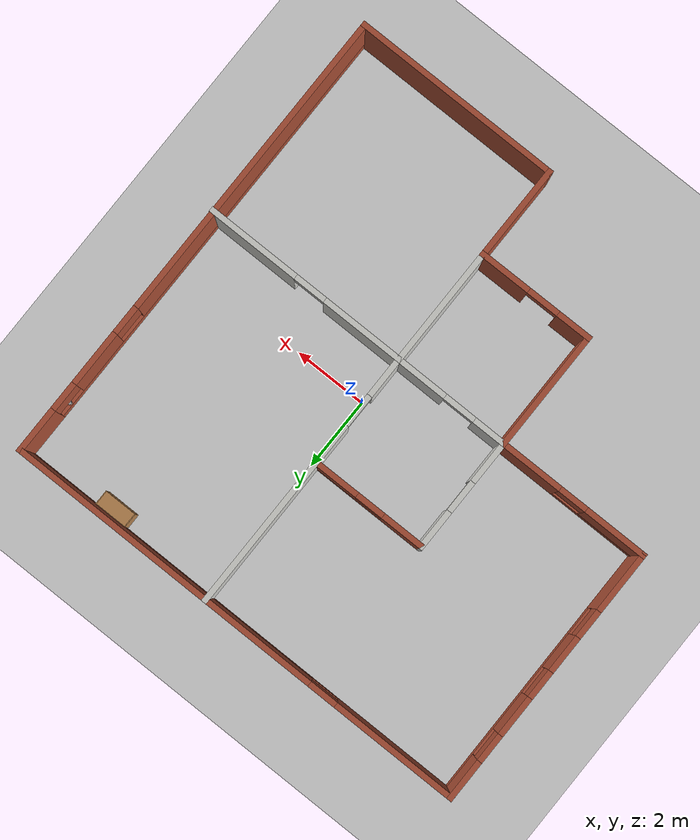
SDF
<sdf version="1.6">
 <world name="default">
  <light name="sun" type="directional">
   <pose>0 0 10 0 -0 0</pose>
   <diffuse>0.8 0.8 0.8 1</diffuse>
   <specular>0.2 0.2 0.2 1</specular>
   <attenuation>
    <range>1000</range>
    <constant>0.9</constant>
    <linear>0.01</linear>
    <quadratic>0.001</quadratic>
   </attenuation>
   <direction>-0.5 0.1 -0.9</direction>
  </light>
  <model name="ground_plane">
   <static>1</static>
   <link name="link">
    <collision name="collision">
     <geometry><plane><normal>0 0 1</normal><size>100 100</size></plane></geometry>
     <surface>
      <contact><collide_bitmask>65535</collide_bitmask></contact>
      <friction><ode><mu>100</mu><mu2>50</mu2></ode></friction>
     </surface>
    </collision>
    <visual name="visual">
     <cast_shadows>0</cast_shadows>
     <geometry><plane><normal>0 0 1</normal><size>100 100</size></plane></geometry>
     <material>
      <script><uri>file://media/materials/scripts/gazebo.material</uri><name>Gazebo/Grey</name></script>
     </material>
    </visual>
   </link>
  </model>
  <gravity>0 0 -9.8</gravity>
  <magnetic_field>6e-06 2.3e-05 -4.2e-05</magnetic_field>
  <atmosphere type="adiabatic"/>
  <physics name="default_physics" default="0" type="ode">
   <max_step_size>0.001</max_step_size>
   <real_time_factor>1</real_time_factor>
   <real_time_update_rate>1000</real_time_update_rate>
  </physics>
  <scene><ambient>0.4 0.4 0.4 1</ambient><background>0.7 0.7 0.7 1</background><shadows>1</shadows></scene>
  <audio><device>default</device></audio>
  <spherical_coordinates>
   <surface_model>EARTH_WGS84</surface_model>
   <latitude_deg>0</latitude_deg>
   <longitude_deg>0</longitude_deg>
   <elevation>0</elevation>
   <heading_deg>0</heading_deg>
  </spherical_coordinates>
  <model name="drone_house">
   <pose>-0.99574 -0.46258 0 0 -0 0</pose>
   <link name="Wall_13">
    <pose>-6.61096 2.90292 0 0 -0 1.57198</pose>
    <visual name="Wall_13_Visual_0">
     <pose>-2.87431 0 1.25 0 -0 0</pose>
     <geometry><box><size>1.78598 0.15 2.5</size></box></geometry>
     <material>
      <script><uri>file://media/materials/scripts/gazebo.material</uri><name>Gazebo/Bricks</name></script>
      <ambient>1 1 1 1</ambient>
     </material>
     <meta><layer>0</layer></meta>
    </visual>
    <collision name="Wall_13_Collision_0">
     <geometry><box><size>1.78598 0.15 2.5</size></box></geometry>
     <pose>-2.87431 0 1.25 0 -0 0</pose>
    </collision>
    <visual name="Wall_13_Visual_1">
     <pose>0.892988 0 0.25 0 -0 0</pose>
     <geometry><box><size>5.74863 0.15 0.5</size></box></geometry>
     <material>
      <script><uri>file://media/materials/scripts/gazebo.material</uri><name>Gazebo/Bricks</name></script>
      <ambient>1 1 1 1</ambient>
     </material>
     <meta><layer>0</layer></meta>
    </visual>
    <collision name="Wall_13_Collision_1">
     <geometry><box><size>5.74863 0.15 0.5</size></box></geometry>
     <pose>0.892988 0 0.25 0 -0 0</pose>
    </collision>
    <visual name="Wall_13_Visual_2">
     <pose>-0.659458 0 1.5 0 -0 0</pose>
     <geometry><box><size>1.04373 0.15 2</size></box></geometry>
     <material>
      <script><uri>file://media/materials/scripts/gazebo.material</uri><name>Gazebo/Bricks</name></script>
      <ambient>1 1 1 1</ambient>
     </material>
     <meta><layer>0</layer></meta>
    </visual>
    <collision name="Wall_13_Collision_2">
     <geometry><box><size>1.04373 0.15 2</size></box></geometry>
     <pose>-0.659458 0 1.5 0 -0 0</pose>
    </collision>
    <visual name="Wall_13_Visual_3">
     <pose>1.2293 0 1.5 0 -0 0</pose>
     <geometry><box><size>1.13378 0.15 2</size></box></geometry>
     <material>
      <script><uri>file://media/materials/scripts/gazebo.material</uri><name>Gazebo/Bricks</name></script>
      <ambient>1 1 1 1</ambient>
     </material>
     <meta><layer>0</layer></meta>
    </visual>
    <collision name="Wall_13_Collision_3">
     <geometry><box><size>1.13378 0.15 2</size></box></geometry>
     <pose>1.2293 0 1.5 0 -0 0</pose>
    </collision>
    <visual name="Wall_13_Visual_4">
     <pose>3.18174 0 1.5 0 -0 0</pose>
     <geometry><box><size>1.17111 0.15 2</size></box></geometry>
     <material>
      <script><uri>file://media/materials/scripts/gazebo.material</uri><name>Gazebo/Bricks</name></script>
      <ambient>1 1 1 1</ambient>
     </material>
     <meta><layer>0</layer></meta>
    </visual>
    <collision name="Wall_13_Collision_4">
     <geometry><box><size>1.17111 0.15 2</size></box></geometry>
     <pose>3.18174 0 1.5 0 -0 0</pose>
    </collision>
    <visual name="Wall_13_Visual_5">
     <pose>-1.58133 0 1.9 0 -0 0</pose>
     <geometry><box><size>0.8 0.15 1.2</size></box></geometry>
     <material>
      <script><uri>file://media/materials/scripts/gazebo.material</uri><name>Gazebo/Bricks</name></script>
      <ambient>1 1 1 1</ambient>
     </material>
     <meta><layer>0</layer></meta>
    </visual>
    <collision name="Wall_13_Collision_5">
     <geometry><box><size>0.8 0.15 1.2</size></box></geometry>
     <pose>-1.58133 0 1.9 0 -0 0</pose>
    </collision>
    <visual name="Wall_13_Visual_6">
     <pose>0.262409 0 1.9 0 -0 0</pose>
     <geometry><box><size>0.8 0.15 1.2</size></box></geometry>
     <material>
      <script><uri>file://media/materials/scripts/gazebo.material</uri><name>Gazebo/Bricks</name></script>
      <ambient>1 1 1 1</ambient>
     </material>
     <meta><layer>0</layer></meta>
    </visual>
    <collision name="Wall_13_Collision_6">
     <geometry><box><size>0.8 0.15 1.2</size></box></geometry>
     <pose>0.262409 0 1.9 0 -0 0</pose>
    </collision>
    <visual name="Wall_13_Visual_7">
     <pose>2.19619 0 1.9 0 -0 0</pose>
     <geometry><box><size>0.8 0.15 1.2</size></box></geometry>
     <material>
      <script><uri>file://media/materials/scripts/gazebo.material</uri><name>Gazebo/Bricks</name></script>
      <ambient>1 1 1 1</ambient>
     </material>
     <meta><layer>0</layer></meta>
    </visual>
    <collision name="Wall_13_Collision_7">
     <geometry><box><size>0.8 0.15 1.2</size></box></geometry>
     <pose>2.19619 0 1.9 0 -0 0</pose>
    </collision>
   </link>
   <link name="Wall_14">
    <pose>-0.010141 6.59522 0 0 -0 0</pose>
    <visual name="Wall_14_Visual_0">
     <pose>-4.88736 0 1.25 0 -0 0</pose>
     <geometry><box><size>3.5857 0.15 2.5</size></box></geometry>
     <material>
      <script><uri>file://media/materials/scripts/gazebo.material</uri><name>Gazebo/Bricks</name></script>
      <ambient>1 1 1 1</ambient>
     </material>
     <meta><layer>0</layer></meta>
    </visual>
    <collision name="Wall_14_Collision_0">
     <geometry><box><size>3.5857 0.15 2.5</size></box></geometry>
     <pose>-4.88736 0 1.25 0 -0 0</pose>
    </collision>
    <visual name="Wall_14_Visual_1">
     <pose>1.79285 0 0.25 0 -0 0</pose>
     <geometry><box><size>9.77472 0.15 0.5</size></box></geometry>
     <material>
      <script><uri>file://media/materials/scripts/gazebo.material</uri><name>Gazebo/Bricks</name></script>
      <ambient>1 1 1 1</ambient>
     </material>
     <meta><layer>0</layer></meta>
    </visual>
    <collision name="Wall_14_Collision_1">
     <geometry><box><size>9.77472 0.15 0.5</size></box></geometry>
     <pose>1.79285 0 0.25 0 -0 0</pose>
    </collision>
    <visual name="Wall_14_Visual_2">
     <pose>2.19285 0 1.5 0 -0 0</pose>
     <geometry><box><size>8.97472 0.15 2</size></box></geometry>
     <material>
      <script><uri>file://media/materials/scripts/gazebo.material</uri><name>Gazebo/Bricks</name></script>
      <ambient>1 1 1 1</ambient>
     </material>
     <meta><layer>0</layer></meta>
    </visual>
    <collision name="Wall_14_Collision_2">
     <geometry><box><size>8.97472 0.15 2</size></box></geometry>
     <pose>2.19285 0 1.5 0 -0 0</pose>
    </collision>
    <visual name="Wall_14_Visual_3">
     <pose>-2.69451 0 1.9 0 -0 0</pose>
     <geometry><box><size>0.8 0.15 1.2</size></box></geometry>
     <material>
      <script><uri>file://media/materials/scripts/gazebo.material</uri><name>Gazebo/Bricks</name></script>
      <ambient>1 1 1 1</ambient>
     </material>
     <meta><layer>0</layer></meta>
    </visual>
    <collision name="Wall_14_Collision_3">
     <geometry><box><size>0.8 0.15 1.2</size></box></geometry>
     <pose>-2.69451 0 1.9 0 -0 0</pose>
    </collision>
   </link>
   <link name="Wall_15">
    <pose>6.59537 -0.000481 0 0 -0 -1.57075</pose>
    <visual name="Wall_15_Visual_0">
     <pose>-6.00643 0 1.25 0 -0 0</pose>
     <geometry><box><size>1.32856 0.15 2.5</size></box></geometry>
     <material>
      <script><uri>file://media/materials/scripts/gazebo.material</uri><name>Gazebo/Bricks</name></script>
      <ambient>1 1 1 1</ambient>
     </material>
     <meta><layer>0</layer></meta>
    </visual>
    <collision name="Wall_15_Collision_0">
     <geometry><box><size>1.32856 0.15 2.5</size></box></geometry>
     <pose>-6.00643 0 1.25 0 -0 0</pose>
    </collision>
    <visual name="Wall_15_Visual_1">
     <pose>0.664278 0 0.25 0 -0 0</pose>
     <geometry><box><size>12.0129 0.15 0.5</size></box></geometry>
     <material>
      <script><uri>file://media/materials/scripts/gazebo.material</uri><name>Gazebo/Bricks</name></script>
      <ambient>1 1 1 1</ambient>
     </material>
     <meta><layer>0</layer></meta>
    </visual>
    <collision name="Wall_15_Collision_1">
     <geometry><box><size>12.0129 0.15 0.5</size></box></geometry>
     <pose>0.664278 0 0.25 0 -0 0</pose>
    </collision>
    <visual name="Wall_15_Visual_2">
     <pose>-3.76168 0 1.5 0 -0 0</pose>
     <geometry><box><size>1.56093 0.15 2</size></box></geometry>
     <material>
      <script><uri>file://media/materials/scripts/gazebo.material</uri><name>Gazebo/Bricks</name></script>
      <ambient>1 1 1 1</ambient>
     </material>
     <meta><layer>0</layer></meta>
    </visual>
    <collision name="Wall_15_Collision_2">
     <geometry><box><size>1.56093 0.15 2</size></box></geometry>
     <pose>-3.76168 0 1.5 0 -0 0</pose>
    </collision>
    <visual name="Wall_15_Visual_3">
     <pose>2.24474 0 1.5 0 -0 0</pose>
     <geometry><box><size>8.85193 0.15 2</size></box></geometry>
     <material>
      <script><uri>file://media/materials/scripts/gazebo.material</uri><name>Gazebo/Bricks</name></script>
      <ambient>1 1 1 1</ambient>
     </material>
     <meta><layer>0</layer></meta>
    </visual>
    <collision name="Wall_15_Collision_3">
     <geometry><box><size>8.85193 0.15 2</size></box></geometry>
     <pose>2.24474 0 1.5 0 -0 0</pose>
    </collision>
    <visual name="Wall_15_Visual_4">
     <pose>-4.94215 0 1.9 0 -0 0</pose>
     <geometry><box><size>0.8 0.15 1.2</size></box></geometry>
     <material>
      <script><uri>file://media/materials/scripts/gazebo.material</uri><name>Gazebo/Bricks</name></script>
      <ambient>1 1 1 1</ambient>
     </material>
     <meta><layer>0</layer></meta>
    </visual>
    <collision name="Wall_15_Collision_4">
     <geometry><box><size>0.8 0.15 1.2</size></box></geometry>
     <pose>-4.94215 0 1.9 0 -0 0</pose>
    </collision>
    <visual name="Wall_15_Visual_5">
     <pose>-2.58122 0 1.9 0 -0 0</pose>
     <geometry><box><size>0.8 0.15 1.2</size></box></geometry>
     <material>
      <script><uri>file://media/materials/scripts/gazebo.material</uri><name>Gazebo/Bricks</name></script>
      <ambient>1 1 1 1</ambient>
     </material>
     <meta><layer>0</layer></meta>
    </visual>
    <collision name="Wall_15_Collision_5">
     <geometry><box><size>0.8 0.15 1.2</size></box></geometry>
     <pose>-2.58122 0 1.9 0 -0 0</pose>
    </collision>
   </link>
   <link name="Wall_16">
    <collision name="Wall_16_Collision">
     <geometry><box><size>5.85798 0.15 2.5</size></box></geometry>
     <pose>0 0 1.25 0 -0 0</pose>
    </collision>
    <visual name="Wall_16_Visual">
     <pose>0 0 1.25 0 -0 0</pose>
     <geometry><box><size>5.85798 0.15 2.5</size></box></geometry>
     <material>
      <script><uri>file://media/materials/scripts/gazebo.material</uri><name>Gazebo/Bricks</name></script>
      <ambient>1 1 1 1</ambient>
     </material>
     <meta><layer>0</layer></meta>
    </visual>
    <pose>3.74169 -6.59618 0 0 -0 3.14159</pose>
   </link>
   <link name="Wall_17">
    <collision name="Wall_17_Collision">
     <geometry><box><size>2.70831 0.15 2.5</size></box></geometry>
     <pose>0 0 1.25 0 -0 0</pose>
    </collision>
    <visual name="Wall_17_Visual">
     <pose>0 0 1.25 0 -0 0</pose>
     <geometry><box><size>2.70831 0.15 2.5</size></box></geometry>
     <material>
      <script><uri>file://media/materials/scripts/gazebo.material</uri><name>Gazebo/Bricks</name></script>
      <ambient>1 1 1 1</ambient>
     </material>
     <meta><layer>0</layer></meta>
    </visual>
    <pose>0.887696 -5.31703 0 0 -0 1.5708</pose>
   </link>
   <link name="Wall_18">
    <pose>-0.725709 -4.0443 0 0 -0 -3.13761</pose>
    <visual name="Wall_18_Visual_0">
     <pose>-0.951715 0 1.25 0 -0 0</pose>
     <geometry><box><size>1.47348 0.15 2.5</size></box></geometry>
     <material>
      <script><uri>file://media/materials/scripts/gazebo.material</uri><name>Gazebo/Bricks</name></script>
      <ambient>1 1 1 1</ambient>
     </material>
     <meta><layer>0</layer></meta>
    </visual>
    <collision name="Wall_18_Collision_0">
     <geometry><box><size>1.47348 0.15 2.5</size></box></geometry>
     <pose>-0.951715 0 1.25 0 -0 0</pose>
    </collision>
    <visual name="Wall_18_Visual_1">
     <pose>1.18674 0 1.25 0 -0 0</pose>
     <geometry><box><size>1.00343 0.15 2.5</size></box></geometry>
     <material>
      <script><uri>file://media/materials/scripts/gazebo.material</uri><name>Gazebo/Bricks</name></script>
      <ambient>1 1 1 1</ambient>
     </material>
     <meta><layer>0</layer></meta>
    </visual>
    <collision name="Wall_18_Collision_1">
     <geometry><box><size>1.00343 0.15 2.5</size></box></geometry>
     <pose>1.18674 0 1.25 0 -0 0</pose>
    </collision>
    <visual name="Wall_18_Visual_2">
     <pose>0.235026 0 2.25 0 -0 0</pose>
     <geometry><box><size>0.9 0.15 0.5</size></box></geometry>
     <material>
      <script><uri>file://media/materials/scripts/gazebo.material</uri><name>Gazebo/Bricks</name></script>
      <ambient>1 1 1 1</ambient>
     </material>
     <meta><layer>0</layer></meta>
    </visual>
    <collision name="Wall_18_Collision_2">
     <geometry><box><size>0.9 0.15 0.5</size></box></geometry>
     <pose>0.235026 0 2.25 0 -0 0</pose>
    </collision>
   </link>
   <link name="Wall_19">
    <collision name="Wall_19_Collision">
     <geometry><box><size>3.41538 0.15 2.5</size></box></geometry>
     <pose>0 0 1.25 0 -0 0</pose>
    </collision>
    <visual name="Wall_19_Visual">
     <pose>0 0 1.25 0 -0 0</pose>
     <geometry><box><size>3.41538 0.15 2.5</size></box></geometry>
     <material>
      <script><uri>file://media/materials/scripts/gazebo.material</uri><name>Gazebo/Bricks</name></script>
      <ambient>1 1 1 1</ambient>
     </material>
     <meta><layer>0</layer></meta>
    </visual>
    <pose>-2.33911 -2.41804 0 0 -0 1.5708</pose>
   </link>
   <link name="Wall_20">
    <pose>-4.47284 -0.787366 0 0 -0 -3.14065</pose>
    <visual name="Wall_20_Visual_0">
     <pose>-1.30538 0 1.25 0 -0 0</pose>
     <geometry><box><size>1.80669 0.15 2.5</size></box></geometry>
     <material>
      <script><uri>file://media/materials/scripts/gazebo.material</uri><name>Gazebo/Bricks</name></script>
      <ambient>0.760784 0.662745 0.627451 1</ambient>
     </material>
     <meta><layer>0</layer></meta>
    </visual>
    <collision name="Wall_20_Collision_0">
     <geometry><box><size>1.80669 0.15 2.5</size></box></geometry>
     <pose>-1.30538 0 1.25 0 -0 0</pose>
    </collision>
    <visual name="Wall_20_Visual_1">
     <pose>0.903347 0 0.25 0 -0 0</pose>
     <geometry><box><size>2.61077 0.15 0.5</size></box></geometry>
     <material>
      <script><uri>file://media/materials/scripts/gazebo.material</uri><name>Gazebo/Bricks</name></script>
      <ambient>0.760784 0.662745 0.627451 1</ambient>
     </material>
     <meta><layer>0</layer></meta>
    </visual>
    <collision name="Wall_20_Collision_1">
     <geometry><box><size>2.61077 0.15 0.5</size></box></geometry>
     <pose>0.903347 0 0.25 0 -0 0</pose>
    </collision>
    <visual name="Wall_20_Visual_2">
     <pose>1.30335 0 1.5 0 -0 0</pose>
     <geometry><box><size>1.81077 0.15 2</size></box></geometry>
     <material>
      <script><uri>file://media/materials/scripts/gazebo.material</uri><name>Gazebo/Bricks</name></script>
      <ambient>0.760784 0.662745 0.627451 1</ambient>
     </material>
     <meta><layer>0</layer></meta>
    </visual>
    <collision name="Wall_20_Collision_2">
     <geometry><box><size>1.81077 0.15 2</size></box></geometry>
     <pose>1.30335 0 1.5 0 -0 0</pose>
    </collision>
    <visual name="Wall_20_Visual_3">
     <pose>-0.002037 0 1.9 0 -0 0</pose>
     <geometry><box><size>0.8 0.15 1.2</size></box></geometry>
     <material>
      <script><uri>file://media/materials/scripts/gazebo.material</uri><name>Gazebo/Bricks</name></script>
      <ambient>0.760784 0.662745 0.627451 1</ambient>
     </material>
     <meta><layer>0</layer></meta>
    </visual>
    <collision name="Wall_20_Collision_3">
     <geometry><box><size>0.8 0.15 1.2</size></box></geometry>
     <pose>-0.002037 0 1.9 0 -0 0</pose>
    </collision>
   </link>
   <link name="Wall_22">
    <collision name="Wall_22_Collision">
     <geometry><box><size>3.39398 0.15 2.5</size></box></geometry>
     <pose>0 0 1.25 0 -0 0</pose>
    </collision>
    <visual name="Wall_22_Visual">
     <pose>0 0 1.25 0 -0 0</pose>
     <geometry><box><size>3.39398 0.15 2.5</size></box></geometry>
     <material>
      <script><uri>file://media/materials/scripts/gazebo.material</uri><name>Gazebo/CeilingTiled</name></script>
      <ambient>1 1 1 1</ambient>
     </material>
     <meta><layer>0</layer></meta>
    </visual>
    <pose>0.887888 -2.41588 0 0 -0 1.57068</pose>
   </link>
   <link name="Wall_23">
    <pose>-0.725517 -0.789622 0 0 -0 3.13895</pose>
    <visual name="Wall_23_Visual_0">
     <pose>-0.937286 0 1.25 0 -0 0</pose>
     <geometry><box><size>1.50263 0.15 2.5</size></box></geometry>
     <material>
      <script><uri>file://media/materials/scripts/gazebo.material</uri><name>Gazebo/CeilingTiled</name></script>
      <ambient>1 1 1 1</ambient>
     </material>
     <meta><layer>0</layer></meta>
    </visual>
    <collision name="Wall_23_Collision_0">
     <geometry><box><size>1.50263 0.15 2.5</size></box></geometry>
     <pose>-0.937286 0 1.25 0 -0 0</pose>
    </collision>
    <visual name="Wall_23_Visual_1">
     <pose>1.20132 0 1.25 0 -0 0</pose>
     <geometry><box><size>0.974572 0.15 2.5</size></box></geometry>
     <material>
      <script><uri>file://media/materials/scripts/gazebo.material</uri><name>Gazebo/CeilingTiled</name></script>
      <ambient>1 1 1 1</ambient>
     </material>
     <meta><layer>0</layer></meta>
    </visual>
    <collision name="Wall_23_Collision_1">
     <geometry><box><size>0.974572 0.15 2.5</size></box></geometry>
     <pose>1.20132 0 1.25 0 -0 0</pose>
    </collision>
    <visual name="Wall_23_Visual_2">
     <pose>0.26403 0 2.25 0 -0 0</pose>
     <geometry><box><size>0.9 0.15 0.5</size></box></geometry>
     <material>
      <script><uri>file://media/materials/scripts/gazebo.material</uri><name>Gazebo/CeilingTiled</name></script>
      <ambient>1 1 1 1</ambient>
     </material>
     <meta><layer>0</layer></meta>
    </visual>
    <collision name="Wall_23_Collision_2">
     <geometry><box><size>0.9 0.15 0.5</size></box></geometry>
     <pose>0.26403 0 2.25 0 -0 0</pose>
    </collision>
   </link>
   <link name="Wall_26">
    <pose>-2.3392 0.792116 0 0 -0 1.57085</pose>
    <visual name="Wall_26_Visual_0">
     <pose>-1.02327 0 1.25 0 -0 0</pose>
     <geometry><box><size>1.25844 0.15 2.5</size></box></geometry>
     <material>
      <script><uri>file://media/materials/scripts/gazebo.material</uri><name>Gazebo/CeilingTiled</name></script>
      <ambient>1 1 1 1</ambient>
     </material>
     <meta><layer>0</layer></meta>
    </visual>
    <collision name="Wall_26_Collision_0">
     <geometry><box><size>1.25844 0.15 2.5</size></box></geometry>
     <pose>-1.02327 0 1.25 0 -0 0</pose>
    </collision>
    <visual name="Wall_26_Visual_1">
     <pose>1.07922 0 1.25 0 -0 0</pose>
     <geometry><box><size>1.14654 0.15 2.5</size></box></geometry>
     <material>
      <script><uri>file://media/materials/scripts/gazebo.material</uri><name>Gazebo/CeilingTiled</name></script>
      <ambient>1 1 1 1</ambient>
     </material>
     <meta><layer>0</layer></meta>
    </visual>
    <collision name="Wall_26_Collision_1">
     <geometry><box><size>1.14654 0.15 2.5</size></box></geometry>
     <pose>1.07922 0 1.25 0 -0 0</pose>
    </collision>
    <visual name="Wall_26_Visual_2">
     <pose>0.05595 0 2.25 0 -0 0</pose>
     <geometry><box><size>0.9 0.15 0.5</size></box></geometry>
     <material>
      <script><uri>file://media/materials/scripts/gazebo.material</uri><name>Gazebo/CeilingTiled</name></script>
      <ambient>1 1 1 1</ambient>
     </material>
     <meta><layer>0</layer></meta>
    </visual>
    <collision name="Wall_26_Collision_2">
     <geometry><box><size>0.9 0.15 0.5</size></box></geometry>
     <pose>0.05595 0 2.25 0 -0 0</pose>
    </collision>
   </link>
   <link name="Wall_27">
    <pose>-0.729 2.37381 0 0 -0 0.002625</pose>
    <visual name="Wall_27_Visual_0">
     <pose>-1.06406 0 1.25 0 -0 0</pose>
     <geometry><box><size>1.24245 0.15 2.5</size></box></geometry>
     <material>
      <script><uri>file://media/materials/scripts/gazebo.material</uri><name>Gazebo/Bricks</name></script>
      <ambient>1 1 1 1</ambient>
     </material>
     <meta><layer>0</layer></meta>
    </visual>
    <collision name="Wall_27_Collision_0">
     <geometry><box><size>1.24245 0.15 2.5</size></box></geometry>
     <pose>-1.06406 0 1.25 0 -0 0</pose>
    </collision>
    <visual name="Wall_27_Visual_1">
     <pose>0.621227 0 0.25 0 -0 0</pose>
     <geometry><box><size>2.12812 0.15 0.5</size></box></geometry>
     <material>
      <script><uri>file://media/materials/scripts/gazebo.material</uri><name>Gazebo/Bricks</name></script>
      <ambient>1 1 1 1</ambient>
     </material>
     <meta><layer>0</layer></meta>
    </visual>
    <collision name="Wall_27_Collision_1">
     <geometry><box><size>2.12812 0.15 0.5</size></box></geometry>
     <pose>0.621227 0 0.25 0 -0 0</pose>
    </collision>
    <visual name="Wall_27_Visual_2">
     <pose>1.02123 0 1.5 0 -0 0</pose>
     <geometry><box><size>1.32812 0.15 2</size></box></geometry>
     <material>
      <script><uri>file://media/materials/scripts/gazebo.material</uri><name>Gazebo/Bricks</name></script>
      <ambient>1 1 1 1</ambient>
     </material>
     <meta><layer>0</layer></meta>
    </visual>
    <collision name="Wall_27_Collision_2">
     <geometry><box><size>1.32812 0.15 2</size></box></geometry>
     <pose>1.02123 0 1.5 0 -0 0</pose>
    </collision>
    <visual name="Wall_27_Visual_3">
     <pose>-0.042831 0 1.9 0 -0 0</pose>
     <geometry><box><size>0.8 0.15 1.2</size></box></geometry>
     <material>
      <script><uri>file://media/materials/scripts/gazebo.material</uri><name>Gazebo/Bricks</name></script>
      <ambient>1 1 1 1</ambient>
     </material>
     <meta><layer>0</layer></meta>
    </visual>
    <collision name="Wall_27_Collision_3">
     <geometry><box><size>0.8 0.15 1.2</size></box></geometry>
     <pose>-0.042831 0 1.9 0 -0 0</pose>
    </collision>
   </link>
   <link name="Wall_28">
    <pose>0.884679 0.792075 0 0 -0 -1.56865</pose>
    <visual name="Wall_28_Visual_0">
     <pose>-1.04861 0 1.25 0 -0 0</pose>
     <geometry><box><size>1.22471 0.15 2.5</size></box></geometry>
     <material>
      <script><uri>file://media/materials/scripts/gazebo.material</uri><name>Gazebo/CeilingTiled</name></script>
      <ambient>1 1 1 1</ambient>
     </material>
     <meta><layer>0</layer></meta>
    </visual>
    <collision name="Wall_28_Collision_0">
     <geometry><box><size>1.22471 0.15 2.5</size></box></geometry>
     <pose>-1.04861 0 1.25 0 -0 0</pose>
    </collision>
    <visual name="Wall_28_Visual_1">
     <pose>1.06236 0 1.25 0 -0 0</pose>
     <geometry><box><size>1.19722 0.15 2.5</size></box></geometry>
     <material>
      <script><uri>file://media/materials/scripts/gazebo.material</uri><name>Gazebo/CeilingTiled</name></script>
      <ambient>1 1 1 1</ambient>
     </material>
     <meta><layer>0</layer></meta>
    </visual>
    <collision name="Wall_28_Collision_1">
     <geometry><box><size>1.19722 0.15 2.5</size></box></geometry>
     <pose>1.06236 0 1.25 0 -0 0</pose>
    </collision>
    <visual name="Wall_28_Visual_2">
     <pose>0.013746 0 2.25 0 -0 0</pose>
     <geometry><box><size>0.9 0.15 0.5</size></box></geometry>
     <material>
      <script><uri>file://media/materials/scripts/gazebo.material</uri><name>Gazebo/CeilingTiled</name></script>
      <ambient>1 1 1 1</ambient>
     </material>
     <meta><layer>0</layer></meta>
    </visual>
    <collision name="Wall_28_Collision_2">
     <geometry><box><size>0.9 0.15 0.5</size></box></geometry>
     <pose>0.013746 0 2.25 0 -0 0</pose>
    </collision>
   </link>
   <link name="Wall_30">
    <collision name="Wall_30_Collision">
     <geometry><box><size>4.3681 0.15 2.5</size></box></geometry>
     <pose>0 0 1.25 0 -0 0</pose>
    </collision>
    <visual name="Wall_30_Visual">
     <pose>0 0 1.25 0 -0 0</pose>
     <geometry><box><size>4.3681 0.15 2.5</size></box></geometry>
     <material>
      <script><uri>file://media/materials/scripts/gazebo.material</uri><name>Gazebo/CeilingTiled</name></script>
      <ambient>1 1 1 1</ambient>
     </material>
     <meta><layer>0</layer></meta>
    </visual>
    <pose>0.882798 4.48709 0 0 -0 1.57008</pose>
   </link>
   <link name="Wall_32">
    <pose>3.75174 -0.792416 0 0 -0 0.000515</pose>
    <visual name="Wall_32_Visual_0">
     <pose>-1.76286 0 1.25 0 -0 0</pose>
     <geometry><box><size>2.35161 0.15 2.5</size></box></geometry>
     <material>
      <script><uri>file://media/materials/scripts/gazebo.material</uri><name>Gazebo/CeilingTiled</name></script>
      <ambient>1 1 1 1</ambient>
     </material>
     <meta><layer>0</layer></meta>
    </visual>
    <collision name="Wall_32_Collision_0">
     <geometry><box><size>2.35161 0.15 2.5</size></box></geometry>
     <pose>-1.76286 0 1.25 0 -0 0</pose>
    </collision>
    <visual name="Wall_32_Visual_1">
     <pose>1.6258 0 1.25 0 -0 0</pose>
     <geometry><box><size>2.62571 0.15 2.5</size></box></geometry>
     <material>
      <script><uri>file://media/materials/scripts/gazebo.material</uri><name>Gazebo/CeilingTiled</name></script>
      <ambient>1 1 1 1</ambient>
     </material>
     <meta><layer>0</layer></meta>
    </visual>
    <collision name="Wall_32_Collision_1">
     <geometry><box><size>2.62571 0.15 2.5</size></box></geometry>
     <pose>1.6258 0 1.25 0 -0 0</pose>
    </collision>
    <visual name="Wall_32_Visual_2">
     <pose>-0.137053 0 2.25 0 -0 0</pose>
     <geometry><box><size>0.9 0.15 0.5</size></box></geometry>
     <material>
      <script><uri>file://media/materials/scripts/gazebo.material</uri><name>Gazebo/CeilingTiled</name></script>
      <ambient>1 1 1 1</ambient>
     </material>
     <meta><layer>0</layer></meta>
    </visual>
    <collision name="Wall_32_Collision_2">
     <geometry><box><size>0.9 0.15 0.5</size></box></geometry>
     <pose>-0.137053 0 2.25 0 -0 0</pose>
    </collision>
   </link>
   <static>1</static>
  </model>
  <model name="bookshelf">
   <static>1</static>
   <link name="link">
    <inertial><mass>1</mass></inertial>
    <collision name="back">
     <pose>0 0.005 0.6 0 -0 0</pose>
     <geometry><box><size>0.9 0.01 1.2</size></box></geometry>
    </collision>
    <visual name="visual1">
     <pose>0 0.005 0.6 0 -0 0</pose>
     <geometry><box><size>0.9 0.01 1.2</size></box></geometry>
     <material>
      <script><uri>file://media/materials/scripts/gazebo.material</uri><name>Gazebo/Wood</name></script>
     </material>
    </visual>
    <collision name="left_side">
     <pose>0.45 -0.195 0.6 0 -0 0</pose>
     <geometry><box><size>0.02 0.4 1.2</size></box></geometry>
    </collision>
    <visual name="visual2">
     <pose>0.45 -0.195 0.6 0 -0 0</pose>
     <geometry><box><size>0.02 0.4 1.2</size></box></geometry>
     <material>
      <script><uri>file://media/materials/scripts/gazebo.material</uri><name>Gazebo/Wood</name></script>
     </material>
    </visual>
    <collision name="right_side">
     <pose>-0.45 -0.195 0.6 0 -0 0</pose>
     <geometry><box><size>0.02 0.4 1.2</size></box></geometry>
    </collision>
    <visual name="visual3">
     <pose>-0.45 -0.195 0.6 0 -0 0</pose>
     <geometry><box><size>0.02 0.4 1.2</size></box></geometry>
     <material>
      <script><uri>file://media/materials/scripts/gazebo.material</uri><name>Gazebo/Wood</name></script>
     </material>
    </visual>
    <collision name="bottom">
     <pose>0 -0.195 0.03 0 -0 0</pose>
     <geometry><box><size>0.88 0.4 0.06</size></box></geometry>
    </collision>
    <visual name="visual4">
     <pose>0 -0.195 0.03 0 -0 0</pose>
     <geometry><box><size>0.88 0.4 0.06</size></box></geometry>
     <material>
      <script><uri>file://media/materials/scripts/gazebo.material</uri><name>Gazebo/Wood</name></script>
     </material>
    </visual>
    <collision name="top">
     <pose>0 -0.195 1.19 0 -0 0</pose>
     <geometry><box><size>0.88 0.4 0.02</size></box></geometry>
    </collision>
    <visual name="visual5">
     <pose>0 -0.195 1.19 0 -0 0</pose>
     <geometry><box><size>0.88 0.4 0.02</size></box></geometry>
     <material>
      <script><uri>file://media/materials/scripts/gazebo.material</uri><name>Gazebo/Wood</name></script>
     </material>
    </visual>
    <collision name="low_shelf">
     <pose>0 -0.195 0.43 0 -0 0</pose>
     <geometry><box><size>0.88 0.4 0.02</size></box></geometry>
    </collision>
    <visual name="visual6">
     <pose>0 -0.195 0.43 0 -0 0</pose>
     <geometry><box><size>0.88 0.4 0.02</size></box></geometry>
     <material>
      <script><uri>file://media/materials/scripts/gazebo.material</uri><name>Gazebo/Wood</name></script>
     </material>
    </visual>
    <collision name="high_shelf">
     <pose>0 -0.195 0.8 0 -0 0</pose>
     <geometry><box><size>0.88 0.4 0.02</size></box></geometry>
    </collision>
    <visual name="visual7">
     <pose>0 -0.195 0.8 0 -0 0</pose>
     <geometry><box><size>0.88 0.4 0.02</size></box></geometry>
     <material>
      <script><uri>file://media/materials/scripts/gazebo.material</uri><name>Gazebo/Wood</name></script>
     </material>
    </visual>
   </link>
   <pose>3.02703 6.03213 0 0 -0 0</pose>
  </model>
  <model name="beer">
   <link name="link">
    <pose>0 0 0.115 0 -0 0</pose>
    <inertial>
     <mass>0.39</mass>
     <inertia><ixx>0.00058</ixx><ixy>0</ixy><ixz>0</ixz><iyy>0.00058</iyy><iyz>0</iyz><izz>0.00019</izz></inertia>
    </inertial>
    <collision name="collision">
     <geometry><cylinder><radius>0.055</radius><length>0.23</length></cylinder></geometry>
    </collision>
    <visual name="visual">
     <geometry><cylinder><radius>0.055</radius><length>0.23</length></cylinder></geometry>
     <material>
      <script>
       <uri>model://beer/materials/scripts</uri>
       <uri>model://beer/materials/textures</uri>
       <name>Beer/Diffuse</name>
      </script>
     </material>
    </visual>
   </link>
   <pose>5.6 4.52965 0.499996 2.6e-05 0.000104 -0.000353</pose>
  </model>
 </world>
</sdf>
